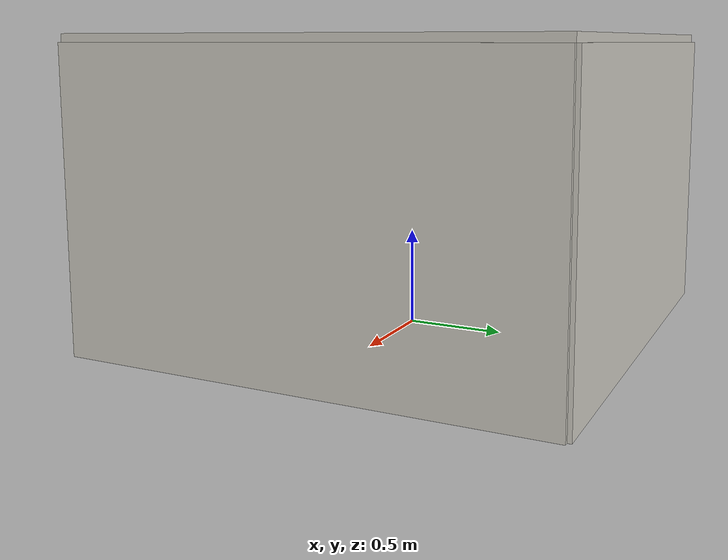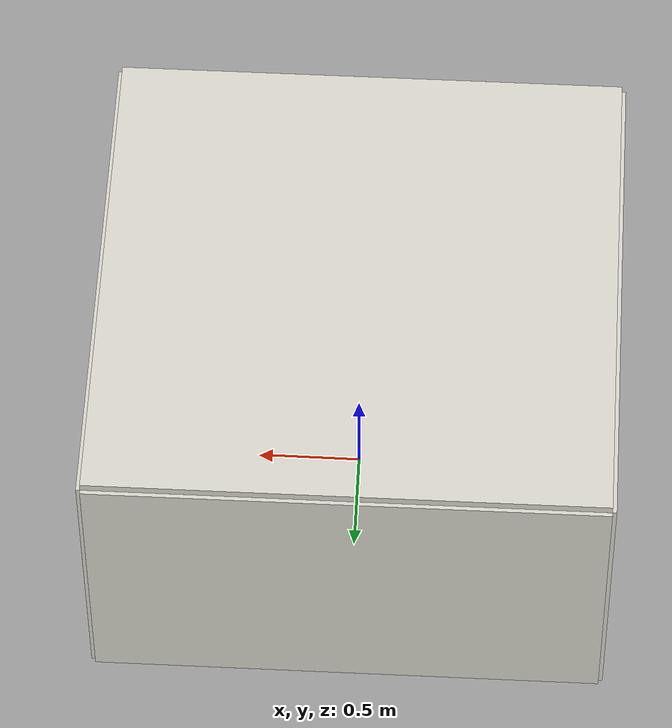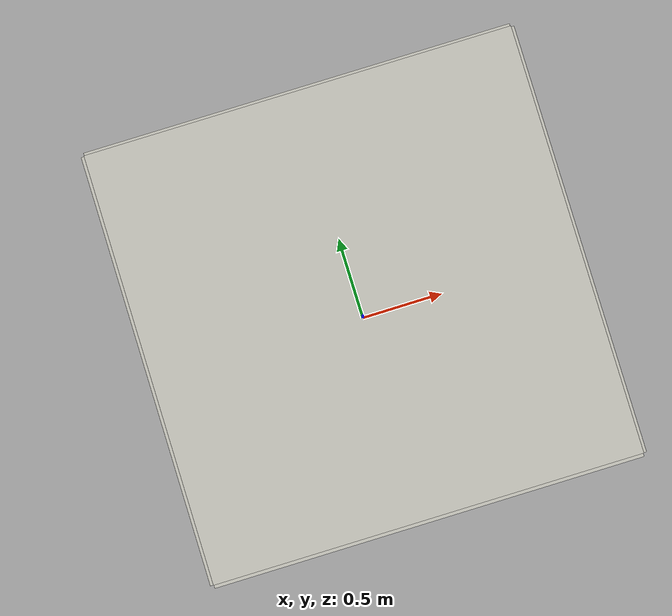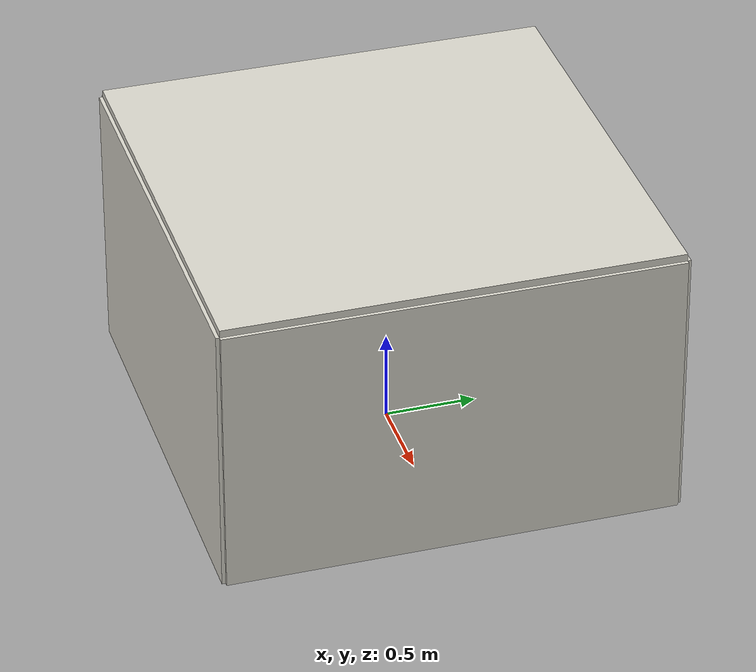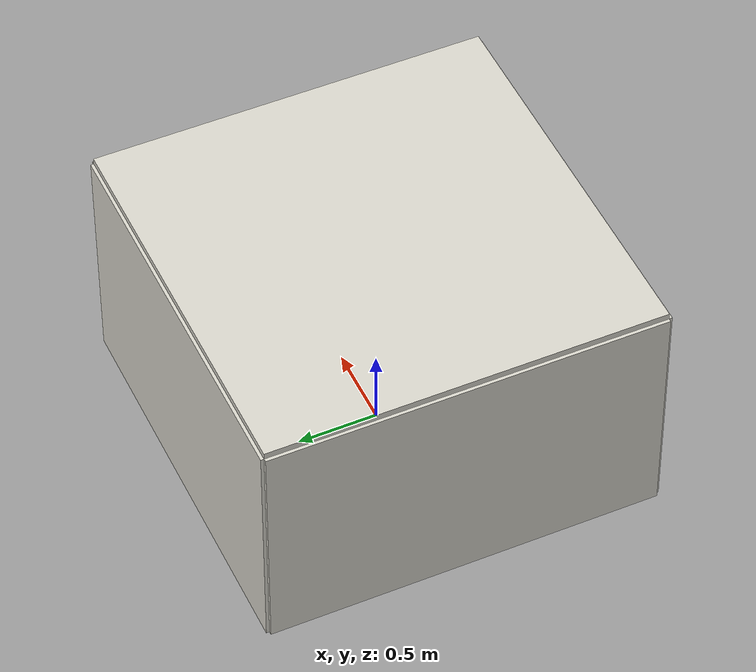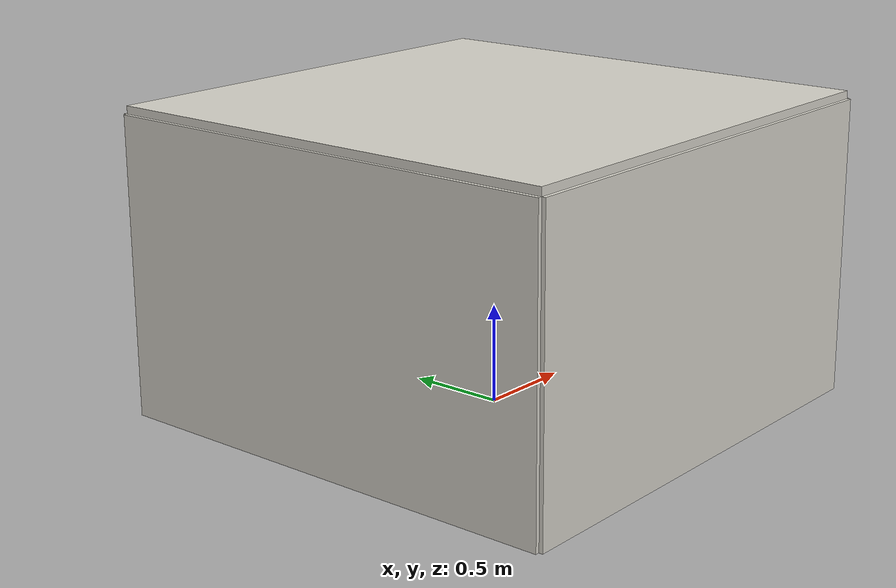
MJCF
<mujoco model="room">
  <asset>
    <texture name="floor_texture" type="2d" builtin="checker"
             rgb1="0.35 0.30 0.25" rgb2="0.45 0.40 0.33" width="512" height="512"/>
    <texture name="wall_texture" type="cube" builtin="flat"
             rgb1="0.85 0.84 0.80" width="1024" height="1024"/>

    <material name="floor_material" texture="floor_texture" texuniform="true" texrepeat="3 3"
              specular="0.2" shininess="0.3"/>
    <material name="wall_material" texture="wall_texture" texuniform="false" texrepeat="1 1"
              specular="0.1" shininess="0.1"/>
  </asset>

  <worldbody>
    <light name="key" pos="0.5 0.5 1.3" dir="-0.3 -0.3 -1" diffuse="0.7 0.7 0.7"/>
    <light name="fill" pos="-0.7 0.2 1.2" dir="0.4 0 -1" diffuse="0.3 0.3 0.3" castshadow="false"/>

    <!-- 2.4 x 2.4 m, 1.5 m, 20 mm thick -->
    <geom name="floor" type="plane" size="1.2 1.2 0.05" material="floor_material"/>

    <geom name="wall_px" type="box" pos="1.22 0 0.75" size="0.02 1.22 0.75" material="wall_material"/>
    <geom name="wall_nx" type="box" pos="-1.22 0 0.75" size="0.02 1.22 0.75" material="wall_material"/>
    <geom name="wall_py" type="box" pos="0 1.22 0.75" size="1.22 0.02 0.75" material="wall_material"/>
    <geom name="wall_ny" type="box" pos="0 -1.22 0.75" size="1.22 0.02 0.75" material="wall_material"/>

    <geom name="ceiling" type="box" pos="0 0 1.52" size="1.22 1.22 0.02" material="wall_material"/>
  </worldbody>
</mujoco>
